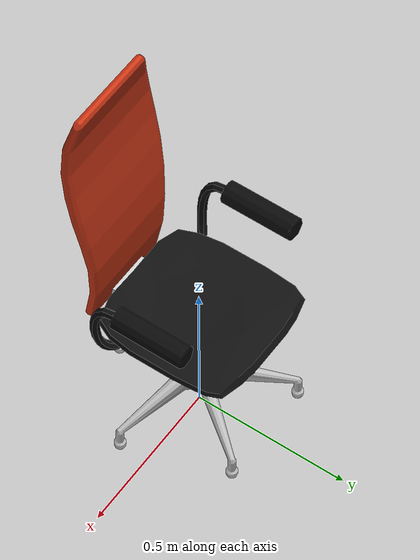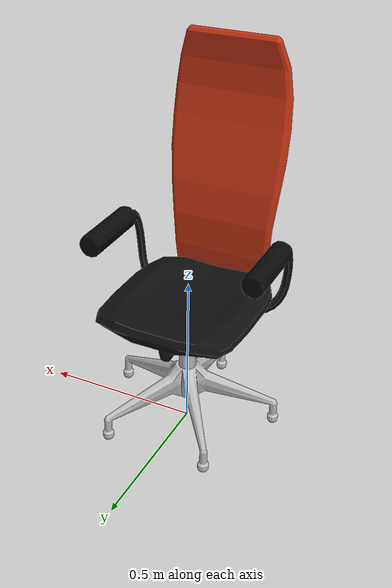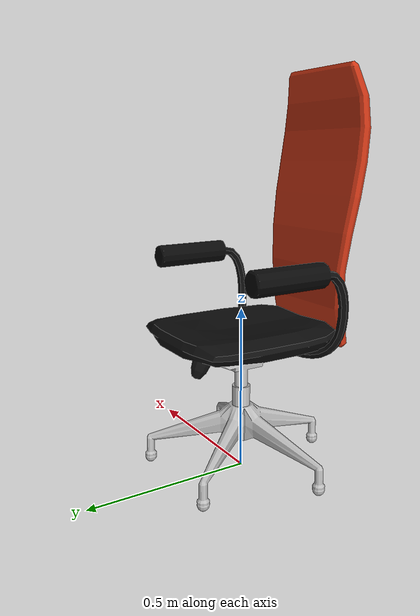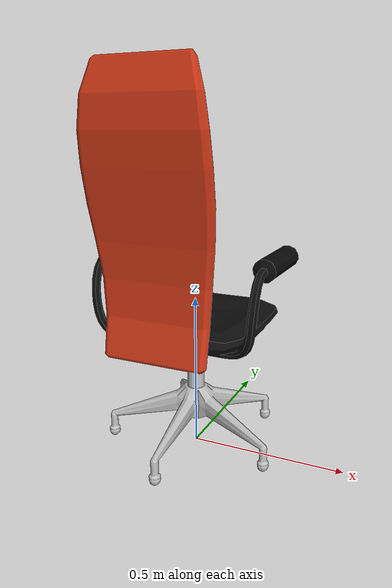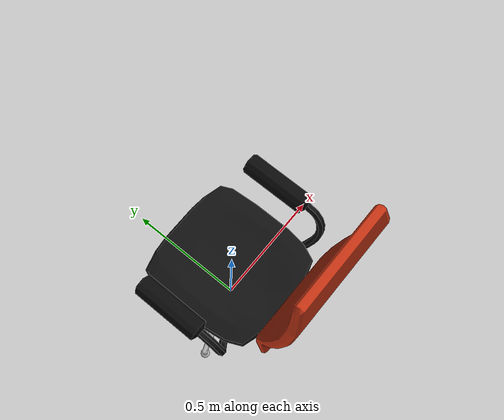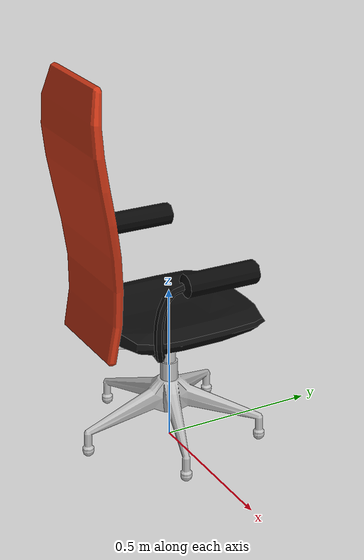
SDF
<?xml version='1.0'?>
<sdf version="1.4">
	<model name="office_chair">
		<static>1</static>
		<link name="link">
			<visual name="mesh">
				<geometry>
					<mesh>
						<uri>model://meshes/office_chair.dae</uri>
					</mesh>
				</geometry>
			</visual>
			<collision name="seat">
				<pose>0 0 0.225 0 0 0</pose>
				<geometry>
					<box>
						<size>0.46 0.5 0.45</size>
					</box>
				</geometry>
			</collision>
			<collision name="back_rest">
				<pose>0 -0.255 0.84 0 0 0</pose>
				<geometry>
					<box>
						<size>0.4 0.04 0.84</size>
					</box>
				</geometry>
			</collision>
		</link>
	</model>
</sdf>
